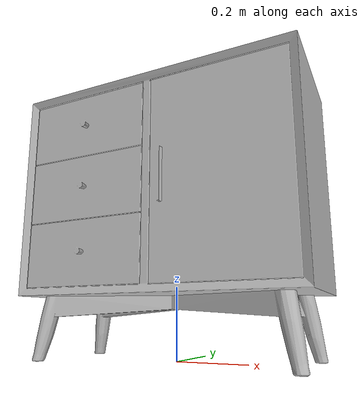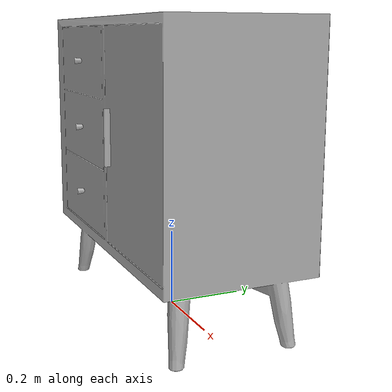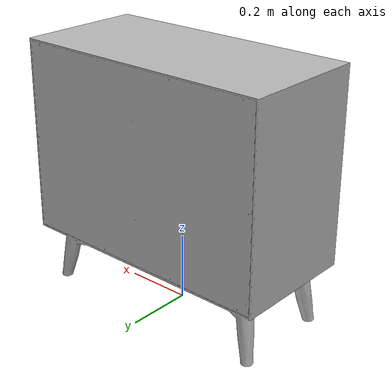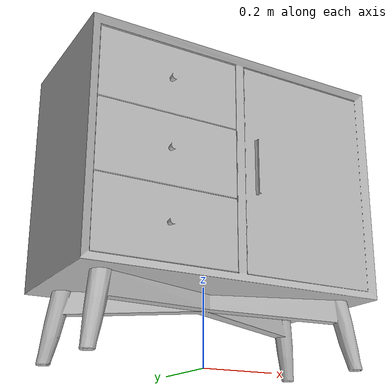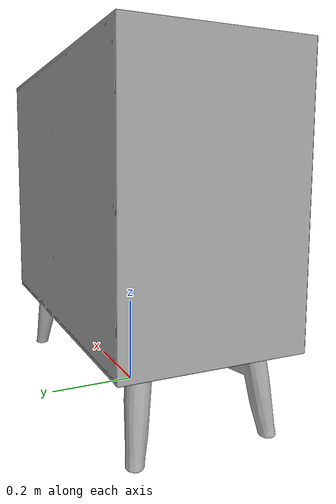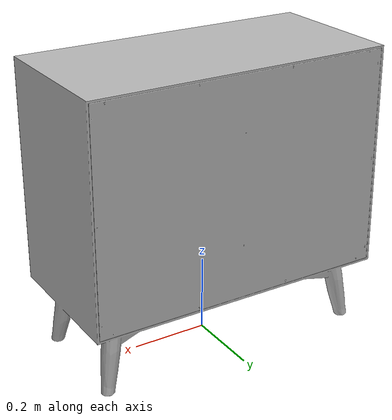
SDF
<sdf version="1.6">
	<model name="AudioVideoMediaCabinets_O8c11fbab8c6f_lod0">
		<link name="main_link">
			<visual name="visual_RootNode">
				<geometry>
					<mesh>
						<uri>model://AudioVideoMediaCabinets_O8c11fbab8c6f_lod0/meshes/visual_RootNode.dae</uri>
					</mesh>
				</geometry>
			</visual>
			<collision name="collision_RootNode_lod0_0">
				<geometry>
					<mesh>
						<uri>model://AudioVideoMediaCabinets_O8c11fbab8c6f_lod0/meshes/collision_RootNode_lod0_0.dae</uri>
					</mesh>
				</geometry>
			</collision>
		</link>
	</model>
</sdf>
